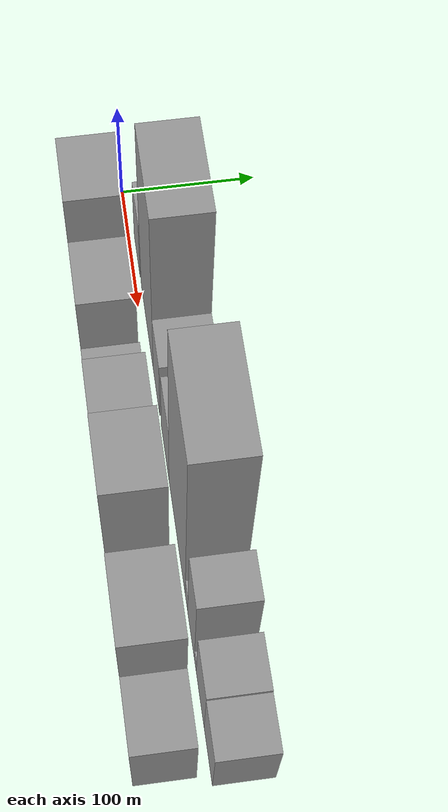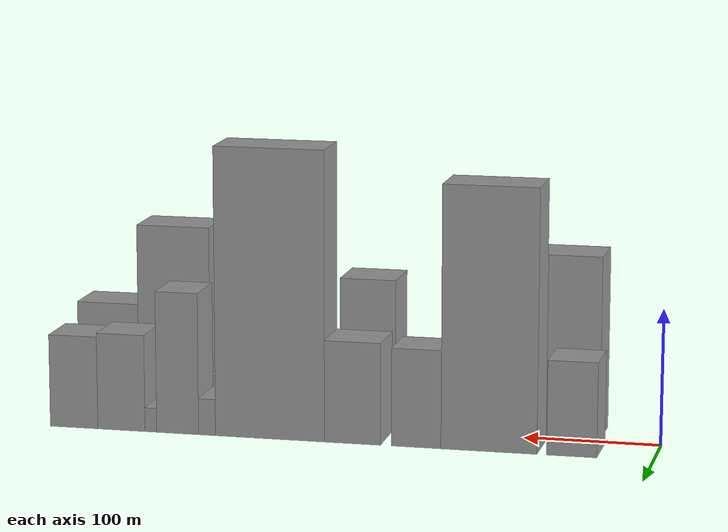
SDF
<sdf version="1.6">
 <world name="default">
  <scene>
   <sky><clouds><speed>12</speed></clouds></sky>
   <ambient>0.4 0.4 0.4 1</ambient>
   <background>0.7 0.7 0.7 1</background>
   <shadows>1</shadows>
  </scene>
  <gravity>0 0 -9.8066</gravity>
  <magnetic_field>6e-06 2.3e-05 -4.2e-05</magnetic_field>
  <physics default="0" name="default_physics" type="ode">
   <ode>
    <solver>
     <type>quick</type>
     <iters>10</iters>
     <sor>1.0</sor>
     <use_dynamic_moi_rescaling>0</use_dynamic_moi_rescaling>
    </solver>
    <constraints>
     <cfm>0</cfm>
     <erp>0.2</erp>
     <contact_max_correcting_vel>100</contact_max_correcting_vel>
     <contact_surface_layer>0.001</contact_surface_layer>
    </constraints>
   </ode>
   <max_step_size>0.004</max_step_size>
   <real_time_factor>1</real_time_factor>
   <real_time_update_rate>250</real_time_update_rate>
  </physics>
  <light name="sun" type="directional">
   <pose>0 0 10 0 0 0</pose>
   <diffuse>0.8 0.8 0.8 1</diffuse>
   <specular>0.2 0.2 0.2 1</specular>
   <attenuation>
    <range>1000</range>
    <constant>0.9</constant>
    <linear>0.01</linear>
    <quadratic>0.001</quadratic>
   </attenuation>
   <direction>-0.5 0.1 -0.9</direction>
  </light>
  <model name="building_1">
   <static>1</static>
   <pose>57.9258 24.5000 0 0.000000 0.000000 1.570796</pose>
   <link name="link">
    <pose>0 0 34.50 0 0 0</pose>
    <collision name="collision"><geometry><box><size>40.0000 35.8517 69.0000</size></box></geometry></collision>
    <visual name="visual">
     <cast_shadows>0</cast_shadows>
     <geometry><box><size>40.0000 35.8517 69.0000</size></box></geometry>
     <material>
      <script>
       <uri>model://grey_wall/materials/scripts</uri>
       <uri>model://grey_wall/materials/textures</uri>
       <name>vrc/grey_wall</name>
      </script>
     </material>
    </visual>
   </link>
  </model>
  <model name="building_2">
   <static>1</static>
   <pose>117.6256 24.5000 0 0.000000 0.000000 1.570796</pose>
   <link name="link">
    <pose>0 0 96.00 0 0 0</pose>
    <collision name="collision"><geometry><box><size>40.0000 69.5479 192.0000</size></box></geometry></collision>
    <visual name="visual">
     <cast_shadows>0</cast_shadows>
     <geometry><box><size>40.0000 69.5479 192.0000</size></box></geometry>
     <material>
      <script>
       <uri>model://grey_wall/materials/scripts</uri>
       <uri>model://grey_wall/materials/textures</uri>
       <name>vrc/grey_wall</name>
      </script>
     </material>
    </visual>
   </link>
  </model>
  <model name="building_3">
   <static>1</static>
   <pose>170.5187 24.5000 0 0.000000 0.000000 1.570796</pose>
   <link name="link">
    <pose>0 0 36.00 0 0 0</pose>
    <collision name="collision"><geometry><box><size>40.0000 36.2383 72.0000</size></box></geometry></collision>
    <visual name="visual">
     <cast_shadows>0</cast_shadows>
     <geometry><box><size>40.0000 36.2383 72.0000</size></box></geometry>
     <material>
      <script>
       <uri>model://grey_wall/materials/scripts</uri>
       <uri>model://grey_wall/materials/textures</uri>
       <name>vrc/grey_wall</name>
      </script>
     </material>
    </visual>
   </link>
  </model>
  <model name="building_4">
   <static>1</static>
   <pose>217.3484 24.5000 0 0.000000 0.000000 1.570796</pose>
   <link name="link">
    <pose>0 0 37.50 0 0 0</pose>
    <collision name="collision"><geometry><box><size>40.0000 41.4212 75.0000</size></box></geometry></collision>
    <visual name="visual">
     <cast_shadows>0</cast_shadows>
     <geometry><box><size>40.0000 41.4212 75.0000</size></box></geometry>
     <material>
      <script>
       <uri>model://grey_wall/materials/scripts</uri>
       <uri>model://grey_wall/materials/textures</uri>
       <name>vrc/grey_wall</name>
      </script>
     </material>
    </visual>
   </link>
  </model>
  <model name="building_5">
   <static>1</static>
   <pose>278.8201 24.5000 0 0.000000 0.000000 1.570796</pose>
   <link name="link">
    <pose>0 0 106.50 0 0 0</pose>
    <collision name="collision"><geometry><box><size>40.0000 81.5222 213.0000</size></box></geometry></collision>
    <visual name="visual">
     <cast_shadows>0</cast_shadows>
     <geometry><box><size>40.0000 81.5222 213.0000</size></box></geometry>
     <material>
      <script>
       <uri>model://grey_wall/materials/scripts</uri>
       <uri>model://grey_wall/materials/textures</uri>
       <name>vrc/grey_wall</name>
      </script>
     </material>
    </visual>
   </link>
  </model>
  <model name="building_6">
   <static>1</static>
   <pose>325.9432 24.5000 0 0.000000 0.000000 1.570796</pose>
   <link name="link">
    <pose>0 0 13.50 0 0 0</pose>
    <collision name="collision"><geometry><box><size>40.0000 12.7240 27.0000</size></box></geometry></collision>
    <visual name="visual">
     <cast_shadows>0</cast_shadows>
     <geometry><box><size>40.0000 12.7240 27.0000</size></box></geometry>
     <material>
      <script>
       <uri>model://grey_wall/materials/scripts</uri>
       <uri>model://grey_wall/materials/textures</uri>
       <name>vrc/grey_wall</name>
      </script>
     </material>
    </visual>
   </link>
  </model>
  <model name="building_7">
   <static>1</static>
   <pose>348.2056 24.5000 0 0.000000 0.000000 1.570796</pose>
   <link name="link">
    <pose>0 0 52.50 0 0 0</pose>
    <collision name="collision"><geometry><box><size>40.0000 31.8008 105.0000</size></box></geometry></collision>
    <visual name="visual">
     <cast_shadows>0</cast_shadows>
     <geometry><box><size>40.0000 31.8008 105.0000</size></box></geometry>
     <material>
      <script>
       <uri>model://grey_wall/materials/scripts</uri>
       <uri>model://grey_wall/materials/textures</uri>
       <name>vrc/grey_wall</name>
      </script>
     </material>
    </visual>
   </link>
  </model>
  <model name="building_8">
   <static>1</static>
   <pose>368.5234 24.5000 0 0.000000 0.000000 1.570796</pose>
   <link name="link">
    <pose>0 0 9.00 0 0 0</pose>
    <collision name="collision"><geometry><box><size>40.0000 8.8349 18.0000</size></box></geometry></collision>
    <visual name="visual">
     <cast_shadows>0</cast_shadows>
     <geometry><box><size>40.0000 8.8349 18.0000</size></box></geometry>
     <material>
      <script>
       <uri>model://grey_wall/materials/scripts</uri>
       <uri>model://grey_wall/materials/textures</uri>
       <name>vrc/grey_wall</name>
      </script>
     </material>
    </visual>
   </link>
  </model>
  <model name="building_9">
   <static>1</static>
   <pose>390.9940 24.5000 0 0.000000 0.000000 1.570796</pose>
   <link name="link">
    <pose>0 0 36.00 0 0 0</pose>
    <collision name="collision"><geometry><box><size>40.0000 36.1063 72.0000</size></box></geometry></collision>
    <visual name="visual">
     <cast_shadows>0</cast_shadows>
     <geometry><box><size>40.0000 36.1063 72.0000</size></box></geometry>
     <material>
      <script>
       <uri>model://grey_wall/materials/scripts</uri>
       <uri>model://grey_wall/materials/textures</uri>
       <name>vrc/grey_wall</name>
      </script>
     </material>
    </visual>
   </link>
  </model>
  <model name="building_10">
   <static>1</static>
   <pose>427.2723 24.5000 0 0.000000 0.000000 1.570796</pose>
   <link name="link">
    <pose>0 0 34.50 0 0 0</pose>
    <collision name="collision"><geometry><box><size>40.0000 36.4502 69.0000</size></box></geometry></collision>
    <visual name="visual">
     <cast_shadows>0</cast_shadows>
     <geometry><box><size>40.0000 36.4502 69.0000</size></box></geometry>
     <material>
      <script>
       <uri>model://grey_wall/materials/scripts</uri>
       <uri>model://grey_wall/materials/textures</uri>
       <name>vrc/grey_wall</name>
      </script>
     </material>
    </visual>
   </link>
  </model>
  <model name="building_11">
   <static>1</static>
   <pose>69.9052 -24.5000 0 0.000000 0.000000 1.570796</pose>
   <link name="link">
    <pose>0 0 67.50 0 0 0</pose>
    <collision name="collision"><geometry><box><size>40.0000 49.8104 135.0000</size></box></geometry></collision>
    <visual name="visual">
     <cast_shadows>0</cast_shadows>
     <geometry><box><size>40.0000 49.8104 135.0000</size></box></geometry>
     <material>
      <script>
       <uri>model://grey_wall/materials/scripts</uri>
       <uri>model://grey_wall/materials/textures</uri>
       <name>vrc/grey_wall</name>
      </script>
     </material>
    </visual>
   </link>
  </model>
  <model name="building_12">
   <static>1</static>
   <pose>119.0065 -24.5000 0 0.000000 0.000000 1.570796</pose>
   <link name="link">
    <pose>0 0 43.50 0 0 0</pose>
    <collision name="collision"><geometry><box><size>40.0000 48.3921 87.0000</size></box></geometry></collision>
    <visual name="visual">
     <cast_shadows>0</cast_shadows>
     <geometry><box><size>40.0000 48.3921 87.0000</size></box></geometry>
     <material>
      <script>
       <uri>model://grey_wall/materials/scripts</uri>
       <uri>model://grey_wall/materials/textures</uri>
       <name>vrc/grey_wall</name>
      </script>
     </material>
    </visual>
   </link>
  </model>
  <model name="building_13">
   <static>1</static>
   <pose>149.8535 -24.5000 0 0.000000 0.000000 1.570796</pose>
   <link name="link">
    <pose>0 0 13.50 0 0 0</pose>
    <collision name="collision"><geometry><box><size>40.0000 13.3021 27.0000</size></box></geometry></collision>
    <visual name="visual">
     <cast_shadows>0</cast_shadows>
     <geometry><box><size>40.0000 13.3021 27.0000</size></box></geometry>
     <material>
      <script>
       <uri>model://grey_wall/materials/scripts</uri>
       <uri>model://grey_wall/materials/textures</uri>
       <name>vrc/grey_wall</name>
      </script>
     </material>
    </visual>
   </link>
  </model>
  <model name="building_14">
   <static>1</static>
   <pose>171.3643 -24.5000 0 0.000000 0.000000 1.570796</pose>
   <link name="link">
    <pose>0 0 25.50 0 0 0</pose>
    <collision name="collision"><geometry><box><size>40.0000 29.7194 51.0000</size></box></geometry></collision>
    <visual name="visual">
     <cast_shadows>0</cast_shadows>
     <geometry><box><size>40.0000 29.7194 51.0000</size></box></geometry>
     <material>
      <script>
       <uri>model://grey_wall/materials/scripts</uri>
       <uri>model://grey_wall/materials/textures</uri>
       <name>vrc/grey_wall</name>
      </script>
     </material>
    </visual>
   </link>
  </model>
  <model name="building_15">
   <static>1</static>
   <pose>217.0015 -24.5000 0 0.000000 0.000000 1.570796</pose>
   <link name="link">
    <pose>0 0 55.50 0 0 0</pose>
    <collision name="collision"><geometry><box><size>40.0000 41.5550 111.0000</size></box></geometry></collision>
    <visual name="visual">
     <cast_shadows>0</cast_shadows>
     <geometry><box><size>40.0000 41.5550 111.0000</size></box></geometry>
     <material>
      <script>
       <uri>model://grey_wall/materials/scripts</uri>
       <uri>model://grey_wall/materials/textures</uri>
       <name>vrc/grey_wall</name>
      </script>
     </material>
    </visual>
   </link>
  </model>
  <model name="building_16">
   <static>1</static>
   <pose>252.5093 -24.5000 0 0.000000 0.000000 1.570796</pose>
   <link name="link">
    <pose>0 0 13.50 0 0 0</pose>
    <collision name="collision"><geometry><box><size>40.0000 11.4606 27.0000</size></box></geometry></collision>
    <visual name="visual">
     <cast_shadows>0</cast_shadows>
     <geometry><box><size>40.0000 11.4606 27.0000</size></box></geometry>
     <material>
      <script>
       <uri>model://grey_wall/materials/scripts</uri>
       <uri>model://grey_wall/materials/textures</uri>
       <name>vrc/grey_wall</name>
      </script>
     </material>
    </visual>
   </link>
  </model>
  <model name="building_17">
   <static>1</static>
   <pose>283.8891 -24.5000 0 0.000000 0.000000 1.570796</pose>
   <link name="link">
    <pose>0 0 81.00 0 0 0</pose>
    <collision name="collision"><geometry><box><size>40.0000 51.2989 162.0000</size></box></geometry></collision>
    <visual name="visual">
     <cast_shadows>0</cast_shadows>
     <geometry><box><size>40.0000 51.2989 162.0000</size></box></geometry>
     <material>
      <script>
       <uri>model://grey_wall/materials/scripts</uri>
       <uri>model://grey_wall/materials/textures</uri>
       <name>vrc/grey_wall</name>
      </script>
     </material>
    </visual>
   </link>
  </model>
  <model name="building_18">
   <static>1</static>
   <pose>328.2499 -24.5000 0 0.000000 0.000000 1.570796</pose>
   <link name="link">
    <pose>0 0 16.50 0 0 0</pose>
    <collision name="collision"><geometry><box><size>40.0000 17.4226 33.0000</size></box></geometry></collision>
    <visual name="visual">
     <cast_shadows>0</cast_shadows>
     <geometry><box><size>40.0000 17.4226 33.0000</size></box></geometry>
     <material>
      <script>
       <uri>model://grey_wall/materials/scripts</uri>
       <uri>model://grey_wall/materials/textures</uri>
       <name>vrc/grey_wall</name>
      </script>
     </material>
    </visual>
   </link>
  </model>
  <model name="building_19">
   <static>1</static>
   <pose>364.5694 -24.5000 0 0.000000 0.000000 1.570796</pose>
   <link name="link">
    <pose>0 0 72.00 0 0 0</pose>
    <collision name="collision"><geometry><box><size>40.0000 55.2165 144.0000</size></box></geometry></collision>
    <visual name="visual">
     <cast_shadows>0</cast_shadows>
     <geometry><box><size>40.0000 55.2165 144.0000</size></box></geometry>
     <material>
      <script>
       <uri>model://grey_wall/materials/scripts</uri>
       <uri>model://grey_wall/materials/textures</uri>
       <name>vrc/grey_wall</name>
      </script>
     </material>
    </visual>
   </link>
  </model>
  <model name="building_20">
   <static>1</static>
   <pose>415.6383 -24.5000 0 0.000000 0.000000 1.570796</pose>
   <link name="link">
    <pose>0 0 42.00 0 0 0</pose>
    <collision name="collision"><geometry><box><size>40.0000 46.9212 84.0000</size></box></geometry></collision>
    <visual name="visual">
     <cast_shadows>0</cast_shadows>
     <geometry><box><size>40.0000 46.9212 84.0000</size></box></geometry>
     <material>
      <script>
       <uri>model://grey_wall/materials/scripts</uri>
       <uri>model://grey_wall/materials/textures</uri>
       <name>vrc/grey_wall</name>
      </script>
     </material>
    </visual>
   </link>
  </model>
 </world>
</sdf>
